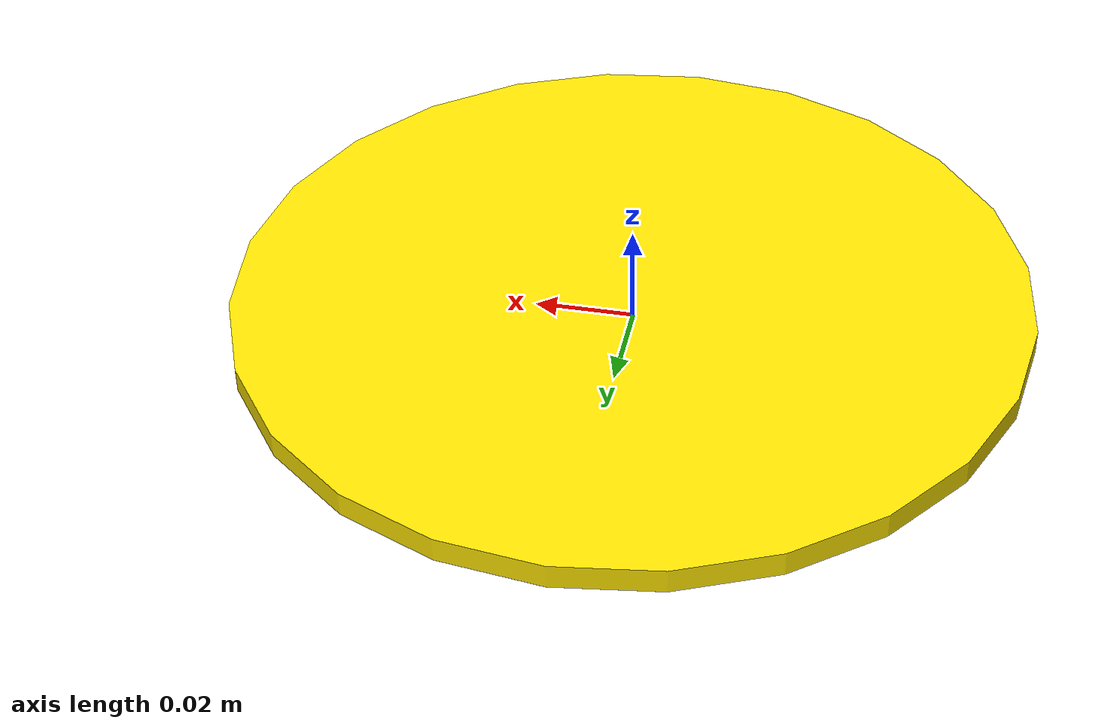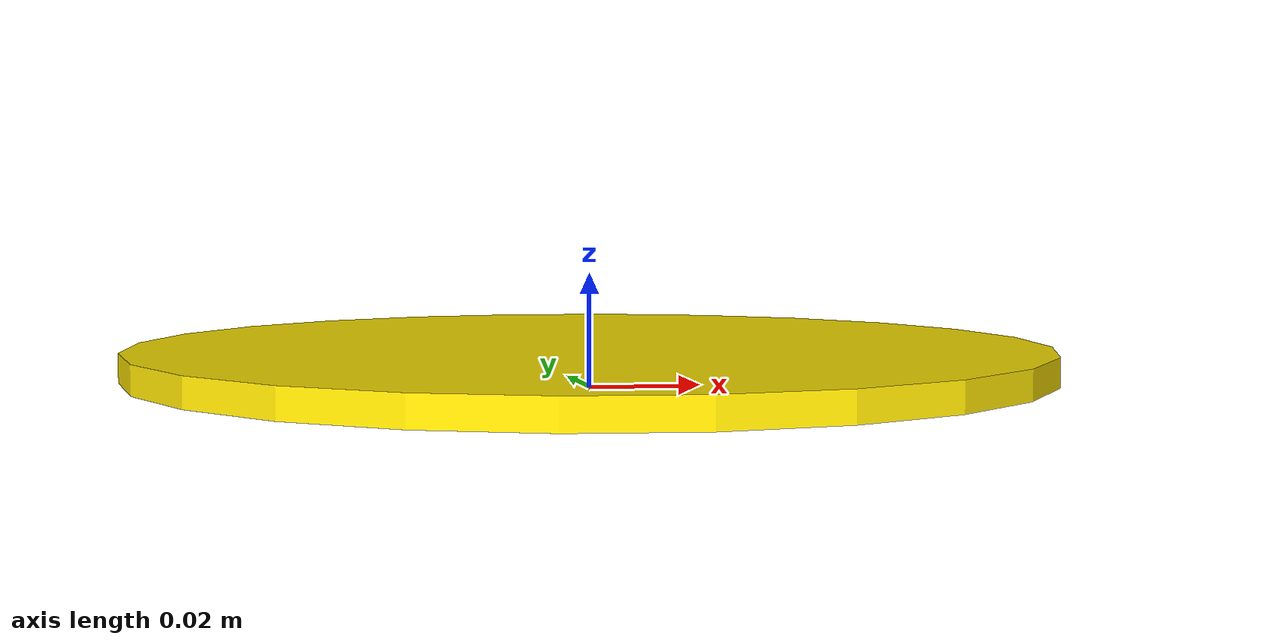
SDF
<?xml version="1.0" ?>
<sdf version="1.6">
  <model name="yellow_object">
    <static>true</static>
    <pose>0 0 0.0025 0 0 0</pose>

    <plugin filename="ignition-gazebo-pose-publisher-system"
            name="ignition::gazebo::systems::PosePublisher">
      <topic>/model/yellow_object/pose</topic>
      <publish_link_pose>false</publish_link_pose>
      <publish_nested_model_pose>false</publish_nested_model_pose>
      <publish_model_pose>true</publish_model_pose>
      <use_pose_vector_msg>true</use_pose_vector_msg>
      <update_rate>5</update_rate>
      <static_publisher>false</static_publisher>
    </plugin>

    <link name="base_link">
      <collision name="collision">
        <pose>0 0 0.0025 0 0 0</pose>
        <geometry>
          <cylinder>
            <radius>0.08</radius>
            <length>0.005</length>
          </cylinder>
        </geometry>
        <surface>
          <friction>
            <ode>
              <mu>1.0</mu>
              <mu2>1.0</mu2>
            </ode>
          </friction>
        </surface>
      </collision>
      <visual name="visual">
        <pose>0 0 0.0025 0 0 0</pose>
        <geometry>
          <cylinder>
            <radius>0.08</radius>
            <length>0.005</length>
          </cylinder>
        </geometry>
        <material>
          <ambient>1.0 0.9 0.0 1.0</ambient>
          <diffuse>1.0 0.9 0.0 1.0</diffuse>
        </material>
      </visual>
    </link>
  </model>
</sdf>
